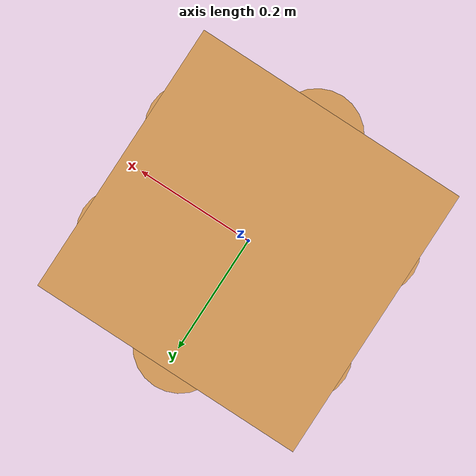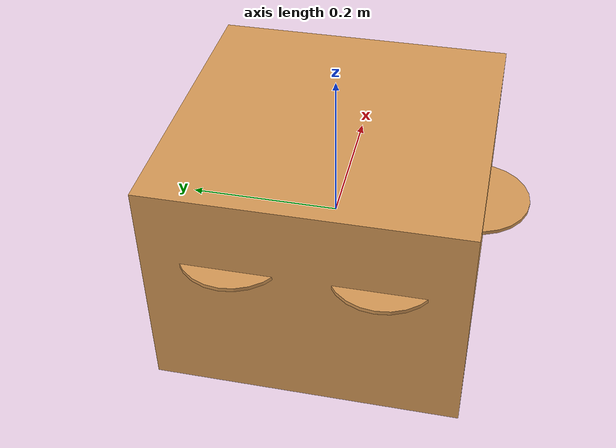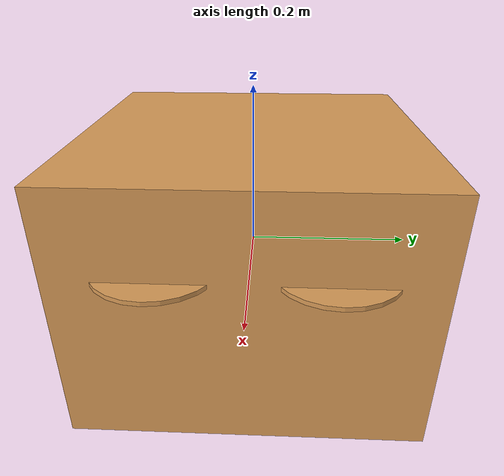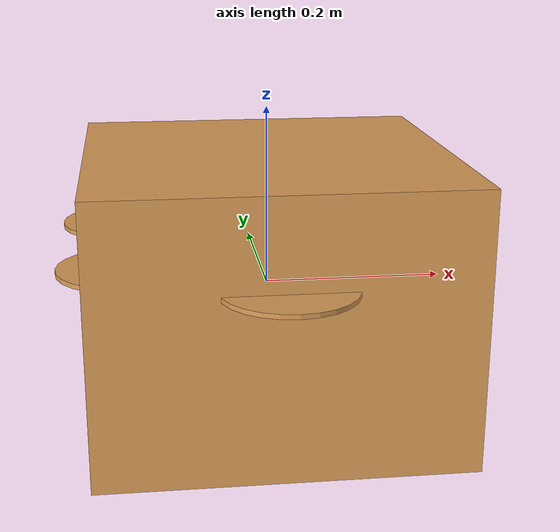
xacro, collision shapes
<robot name="borinot" xmlns:xacro="http://www.ros.org/wiki/xacro">
  <!-- macro includes -->
  <xacro:include
    filename="$(find hidro_robots)/robots/common/xacro/multicopter.xacro" />

  <xacro:include
    filename="$(find hidro_robots)/robots/common/xacro/sensors.xacro" />

  <xacro:include
    filename="$(find hidro_robots)/robots/borinot/xacro/definition.urdf.xacro" />

  <!-- arguments -->
  <xacro:arg name="simulation" default="true" />
  <xacro:arg name="event_based_sim" default="false" />

  <!-- properties -->
  <xacro:property name="simulation" value="$(arg simulation)" />
  <xacro:property name="event_based_sim" value="$(arg event_based_sim)" />

  <xacro:borinot_platform
    robot_name="borinot"
    simulation="${simulation}"
    event_based_sim="${event_based_sim}"
    has_arm="false"
  />

  <xacro:if value="${simulation}">
    <xacro:if value="${event_based_sim}">
      <gazebo>
        <plugin name='eagle_gazebo_event_base_sim_plugin'
          filename='libeagle_gazebo_event_based_sim_plugin.so'>
          <simulationRate>2000</simulationRate>
          <actuationRate>500</actuationRate>
          <uamStateTopic>/borinot/uam_state</uamStateTopic>
          <uamControlTopic>/borinot/uam_control</uamControlTopic>
          <platform_params>
            <baselinkName>borinot__base_link</baselinkName>
            <thrustToTorqueRatio>0.01393568</thrustToTorqueRatio>
            <rotor_params>
              <number>0</number>
              <linkName>borinot__rotor0</linkName>
              <turningDirection>-1</turningDirection>
            </rotor_params>
            <rotor_params>
              <number>1</number>
              <linkName>borinot__rotor1</linkName>
              <turningDirection>1</turningDirection>
            </rotor_params>
            <rotor_params>
              <number>2</number>
              <linkName>borinot__rotor2</linkName>
              <turningDirection>-1</turningDirection>
            </rotor_params>
            <rotor_params>
              <number>3</number>
              <linkName>borinot__rotor3</linkName>
              <turningDirection>1</turningDirection>
            </rotor_params>
            <rotor_params>
              <number>4</number>
              <linkName>borinot__rotor4</linkName>
              <turningDirection>1</turningDirection>
            </rotor_params>
            <rotor_params>
              <number>5</number>
              <linkName>borinot__rotor5</linkName>
              <turningDirection>-1</turningDirection>
            </rotor_params>
          </platform_params>
          <!-- here add the arm -->
        </plugin>
      </gazebo>
    </xacro:if>
  </xacro:if>

</robot>

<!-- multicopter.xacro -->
<robot xmlns:xacro="http://www.ros.org/wiki/xacro">

  <xacro:macro name="platform" params="platform_name mass cog_x cog_y cog_z i_xx i_yy i_zz mesh">

    <link name="${platform_name}__base_link">
      <inertial>
        <origin xyz="${cog_x} ${cog_y} ${cog_z}" rpy="0 0 0" />
        <mass value="${mass}" />
        <inertia ixx="${i_xx}" ixy="0.0" ixz="0.0" iyy="${i_yy}" iyz="0.0" izz="${i_zz}" />
      </inertial>
      <collision>
        <origin rpy="0 0 0" xyz="0 0 0" />
        <geometry>
          <box size="0.4 0.4 0.3" />
        </geometry>
      </collision>
      <visual>
        <origin rpy="0 0 0" xyz="0 0 0" />
        <geometry>
          <mesh
            filename="${mesh}"
            scale="1 1 1" />
        </geometry>
        <material name="">
          <color rgba="0.8471 0.6078 0.3412 1" />
        </material>
      </visual>
    </link>
  </xacro:macro>

  <xacro:macro name="rotor"
    params="platform_name rotor_number parent_link x y z direction simulation event_based_sim">

    <xacro:property name="link_name" value="${platform_name}__rotor${rotor_number}" />
    <xacro:property name="joint_name" value="${platform_name}__j_rotor${rotor_number}" />
    <xacro:property name="direction_rotation" value="ccw" />
    <xacro:property name="joint_type" value="revolute" />

    <xacro:if value="${direction == 'cw'}">
      <xacro:property name="direction_rotation" value="cw" />
    </xacro:if>

    <xacro:unless value="${simulation}">
      <xacro:property name="joint_type" value="fixed" />
    </xacro:unless>

    <link name="${link_name}">
      <inertial>
        <origin xyz="0.0 0.0 0.0" rpy="0 0 0" />
        <mass value="0.005" />
        <inertia ixx="9.75e-07" ixy="0.0" ixz="0.0" iyy="0.000273104" iyz="0.0" izz="0.000274004" />
      </inertial>
      <collision>
        <origin rpy="0 0 0" xyz="0 0 0" />
        <geometry>
          <cylinder length="0.005" radius="0.070" />
        </geometry>
      </collision>
      <visual>
        <origin rpy="0 0 0" xyz="0 0 0" />
        <geometry>
          <mesh
            filename="package://hidro_robots/robots/common/meshes/propeller_${direction_rotation}.dae"
            scale="0.1 0.1 0.1" />
        </geometry>
        <material name="">
          <color rgba="0.8471 0.6078 0.3412 1" />
        </material>
      </visual>
    </link>

    <joint name="${joint_name}" type="${joint_type}">
      <origin xyz="${x} ${y} ${z}" rpy="0.0 0 0.0" />
      <parent link="${parent_link}" />
      <child link="${link_name}" />
      <axis xyz="0 0 1" />
      <limit lower="-1e16" upper="1e16" effort="10" velocity="1e16" />
    </joint>

    <xacro:if value="${simulation}">
      <xacro:unless value="${event_based_sim}">
        <gazebo>
          <plugin name='${joint_name}_plugin' filename='libgazebo_motor_model.so'>
            <robotNamespace></robotNamespace>
            <jointName>${joint_name}</jointName>
            <linkName>${link_name}</linkName>
            <turningDirection>${direction_rotation}</turningDirection>
            <timeConstantUp>0.005</timeConstantUp>
            <timeConstantDown>0.005</timeConstantDown>
            <maxRotVelocity>2236</maxRotVelocity>
            <motorConstant>3.847e-6</motorConstant>
            <momentConstant>0.06</momentConstant>
            <commandSubTopic>/gazebo/command/motor_speed</commandSubTopic>
            <motorNumber>${rotor_number}</motorNumber>
            <rotorDragCoefficient>0.000175</rotorDragCoefficient>
            <rollingMomentCoefficient>1e-06</rollingMomentCoefficient>
            <motorSpeedPubTopic>/motor_speed/${rotor_number}</motorSpeedPubTopic>
            <rotorVelocitySlowdownSim>10</rotorVelocitySlowdownSim>
          </plugin>
        </gazebo>
      </xacro:unless>
    </xacro:if>
  </xacro:macro>

</robot>

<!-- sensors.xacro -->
<robot xmlns:xacro="http://www.ros.org/wiki/xacro">
  <xacro:macro name="imu" params="platform_name">

    <link name='${platform_name}__imu'>
      <inertial>
        <origin xyz="0.0 0.0 0.0341" rpy="0 0 0" />
        <mass value="0.15" />
        <inertia ixx="1e-5" ixy="0.0" ixz="0.0" iyy="1e-5" iyz="0.0" izz="1e-5" />
      </inertial>
    </link>

    <joint name="${platform_name}__j_bl_imu" type="revolute">
      <origin xyz="0 0 0" rpy="0 0 0" />
      <parent link="${platform_name}__base_link" />
      <child link="${platform_name}__imu" />
      <limit lower="0" upper="0" effort="0" velocity="0" />
    </joint>

    <gazebo>
      <!-- Ideal IMU config -->
      <plugin name='imu_plugin' filename='libgazebo_imu_plugin.so'>
        <robotNamespace />
        <linkName>${platform_name}__imu</linkName>
        <imuTopic>/imu</imuTopic>
        <gyroscopeNoiseDensity>0.0</gyroscopeNoiseDensity>
        <gyroscopeRandomWalk>0.0</gyroscopeRandomWalk>
        <gyroscopeBiasCorrelationTime>1000</gyroscopeBiasCorrelationTime>
        <gyroscopeTurnOnBiasSigma>0.00</gyroscopeTurnOnBiasSigma>
        <accelerometerNoiseDensity>0.0</accelerometerNoiseDensity>
        <accelerometerRandomWalk>0.0</accelerometerRandomWalk>
        <accelerometerBiasCorrelationTime>300</accelerometerBiasCorrelationTime>
        <accelerometerTurnOnBiasSigma>0.0</accelerometerTurnOnBiasSigma>
      </plugin>
    </gazebo>

    <!-- Noisy + bias IMU config -->

  </xacro:macro>

  <xacro:macro name="px4_plugins" params="robot_name platform_name ">
    <!-- IMU -->
    <xacro:imu
      platform_name="${platform_name}"
    />

    <!-- MULTIROTOR_PLUGINS -->
    <gazebo>
      <plugin name='multirotor_plugin' filename='libgazebo_multirotor_base_plugin.so'>
        <robotNamespace></robotNamespace>
        <linkName>borinot__base_link</linkName>
        <rotorVelocitySlowdownSim>10</rotorVelocitySlowdownSim>
      </plugin>
    </gazebo>

    <!-- GPS -->
    <gazebo>
      <include>
        <uri>model://gps</uri>
        <pose>0.1 0 0 0 0 0</pose>
        <name>gps0</name>
      </include>
      <joint name='gps0_joint' type='fixed'>
        <child>gps0::link</child>
        <parent>borinot__base_link</parent>
      </joint>
    </gazebo>

    <!-- GROUNDTRUTH -->
    <gazebo>
      <plugin name='groundtruth_plugin' filename='libgazebo_groundtruth_plugin.so'>
        <robotNamespace />
      </plugin>
    </gazebo>

    <!-- MAGNETOMETER -->
    <gazebo>
      <!-- Ideal Magneto config -->
      <plugin name='magnetometer_plugin' filename='libgazebo_magnetometer_plugin.so'>
        <robotNamespace />
        <pubRate>100</pubRate>
        <noiseDensity>0.0</noiseDensity>
        <randomWalk>0.0</randomWalk>
        <biasCorrelationTime>600</biasCorrelationTime>
        <magTopic>/mag</magTopic>
      </plugin>

      <!-- Noisy + bias Magneto config -->
    </gazebo>

    <!-- BAROMETER -->
    <gazebo>
      <plugin name='barometer_plugin' filename='libgazebo_barometer_plugin.so'>
        <robotNamespace />
        <pubRate>50</pubRate>
        <baroTopic>/baro</baroTopic>
        <baroDriftPaPerSec>0</baroDriftPaPerSec>
      </plugin>
    </gazebo>
  </xacro:macro>

</robot>

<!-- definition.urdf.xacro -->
<robot xmlns:xacro="http://www.ros.org/wiki/xacro">
  <!-- macro includes -->
  <xacro:include
    filename="$(find hidro_robots)/robots/common/xacro/multicopter.xacro" />

  <xacro:include
    filename="$(find hidro_robots)/robots/common/xacro/sensors.xacro" />

  <xacro:macro name="borinot_platform" params="robot_name simulation event_based_sim has_arm">

    <xacro:property name="platform_name" value="borinot" />

    <!-- platform -->
    <xacro:unless value="${has_arm}">
      <xacro:platform
        platform_name="${platform_name}"
        mass="2.049"
        cog_x="0.0"
        cog_y="0.0"
        cog_z="0.0341"
        i_xx="0.017598"
        i_yy="0.017957"
        i_zz="0.029599"
        mesh="package://hidro_robots/robots/borinot/meshes/borinot__base_link.dae"
      />
    </xacro:unless>

    <xacro:if value="${has_arm}">
      <xacro:platform
        platform_name="${platform_name}"
        mass="2.647"
        cog_x="0.0"
        cog_y="0.00244"
        cog_z="0.0202"
        i_xx="0.027246422051605018"
        i_yy="0.026854677520396303"
        i_zz="0.039807168462897885"
        mesh="package://hidro_robots/robots/borinot/meshes/borinot__base_link__arm.dae"
      />
    </xacro:if>

    <!-- rotors -->
    <xacro:rotor
      platform_name="${platform_name}"
      rotor_number="0"
      parent_link="${platform_name}__base_link"
      x="0.0"
      y="-0.185"
      z="0.05"
      direction="cw"
      simulation="${simulation}"
      event_based_sim="${event_based_sim}"
    />

    <xacro:rotor
      platform_name="${platform_name}"
      rotor_number="1"
      parent_link="${platform_name}__base_link"
      x="0.0"
      y="0.185"
      z="0.05"
      direction="ccw"
      simulation="${simulation}"
      event_based_sim="${event_based_sim}"
    />

    <xacro:rotor
      platform_name="${platform_name}"
      rotor_number="2"
      parent_link="${platform_name}__base_link"
      x="0.1602146997"
      y="0.0925"
      z="0.05"
      direction="cw"
      simulation="${simulation}"
      event_based_sim="${event_based_sim}"
    />

    <xacro:rotor
      platform_name="${platform_name}"
      rotor_number="3"
      parent_link="${platform_name}__base_link"
      x="-0.1602146997"
      y="-0.0925"
      z="0.05"
      direction="ccw"
      simulation="${simulation}"
      event_based_sim="${event_based_sim}"
    />

    <xacro:rotor
      platform_name="${platform_name}"
      rotor_number="4"
      parent_link="${platform_name}__base_link"
      x="0.1602146997"
      y="-0.0925"
      z="0.05"
      direction="ccw"
      simulation="${simulation}"
      event_based_sim="${event_based_sim}"
    />

    <xacro:rotor
      platform_name="${platform_name}"
      rotor_number="5"
      parent_link="${platform_name}__base_link"
      x="-0.1602146997"
      y="0.0925"
      z="0.05"
      direction="cw"
      simulation="${simulation}"
      event_based_sim="${event_based_sim}"
    />

    <xacro:if value="${simulation}">

      <xacro:unless value="${event_based_sim}">
        <xacro:px4_plugins
          robot_name="${robot_name}"
          platform_name="${platform_name}"
        />

        <!-- MAVLINK -->
        <gazebo>
          <plugin name='mavlink_interface' filename='libgazebo_mavlink_interface.so'>
            <robotNamespace />
            <imuSubTopic>/imu</imuSubTopic>
            <magSubTopic>/mag</magSubTopic>
            <baroSubTopic>/baro</baroSubTopic>
            <mavlink_addr>INADDR_ANY</mavlink_addr>
            <mavlink_tcp_port>4560</mavlink_tcp_port>
            <mavlink_udp_port>14560</mavlink_udp_port>
            <serialEnabled>0</serialEnabled>
            <serialDevice>/dev/ttyACM0</serialDevice>
            <baudRate>921600</baudRate>
            <qgc_addr>INADDR_ANY</qgc_addr>
            <qgc_udp_port>14550</qgc_udp_port>
            <sdk_addr>INADDR_ANY</sdk_addr>
            <sdk_udp_port>14540</sdk_udp_port>
            <hil_mode>0</hil_mode>
            <hil_state_level>0</hil_state_level>
            <send_vision_estimation>0</send_vision_estimation>
            <send_odometry>1</send_odometry>
            <enable_lockstep>1</enable_lockstep>
            <use_tcp>1</use_tcp>
            <motorSpeedCommandPubTopic>/gazebo/command/motor_speed</motorSpeedCommandPubTopic>
            <control_channels>
              <channel name='rotor1'>
                <input_index>0</input_index>
                <input_offset>0</input_offset>
                <input_scaling>2136</input_scaling>
                <zero_position_disarmed>0</zero_position_disarmed>
                <zero_position_armed>100</zero_position_armed>
                <joint_control_type>velocity</joint_control_type>
              </channel>
              <channel name='rotor2'>
                <input_index>1</input_index>
                <input_offset>0</input_offset>
                <input_scaling>2136</input_scaling>
                <zero_position_disarmed>0</zero_position_disarmed>
                <zero_position_armed>100</zero_position_armed>
                <joint_control_type>velocity</joint_control_type>
              </channel>
              <channel name='rotor3'>
                <input_index>2</input_index>
                <input_offset>0</input_offset>
                <input_scaling>2136</input_scaling>
                <zero_position_disarmed>0</zero_position_disarmed>
                <zero_position_armed>100</zero_position_armed>
                <joint_control_type>velocity</joint_control_type>
              </channel>
              <channel name='rotor4'>
                <input_index>3</input_index>
                <input_offset>0</input_offset>
                <input_scaling>2136</input_scaling>
                <zero_position_disarmed>0</zero_position_disarmed>
                <zero_position_armed>100</zero_position_armed>
                <joint_control_type>velocity</joint_control_type>
              </channel>
              <channel name='rotor5'>
                <input_index>4</input_index>
                <input_offset>0</input_offset>
                <input_scaling>2136</input_scaling>
                <zero_position_disarmed>0</zero_position_disarmed>
                <zero_position_armed>100</zero_position_armed>
                <joint_control_type>velocity</joint_control_type>
              </channel>
              <channel name='rotor6'>
                <input_index>5</input_index>
                <input_offset>0</input_offset>
                <input_scaling>2136</input_scaling>
                <zero_position_disarmed>0</zero_position_disarmed>
                <zero_position_armed>100</zero_position_armed>
                <joint_control_type>velocity</joint_control_type>
              </channel>
            </control_channels>
          </plugin>
        </gazebo>
      </xacro:unless>
    </xacro:if>
  </xacro:macro>
</robot>
